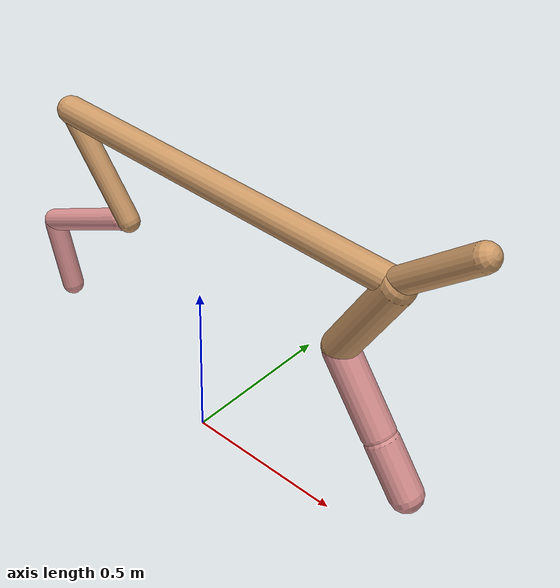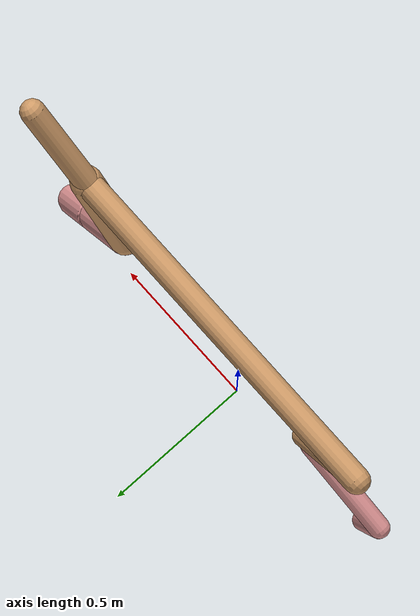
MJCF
<mujoco model="cheetah">
  <compiler angle="radian" coordinate="local" inertiafromgeom="true" settotalmass="14" />
  <default>
    <joint armature=".1" damping=".01" limited="true" solimplimit="0 .8 .03" solreflimit=".02 1" stiffness="8" />
    <geom conaffinity="0" condim="3" contype="1" friction="0.8 .1 .1" rgba="0.8 0.6 .4 1" solimp="0.0 0.8 0.01" solref="0.02 1" />
    <motor ctrllimited="true" ctrlrange="-1 1" />
  </default>
  <size nstack="300000" nuser_geom="1" />
  <option gravity="0 0 -9.81" timestep="0.01" />
  <worldbody>
    <body name="torso" pos="0.0 0.0 0.8991506570608641">
      <joint armature="0" axis="1 0 0" damping="0" limited="false" name="ignorex" pos="0 0 0" stiffness="0" type="slide" />
      <joint armature="0" axis="0 0 1" damping="0" limited="false" name="ignorez" pos="0 0 0" stiffness="0" type="slide" />
      <joint armature="0" axis="0 1 0" damping="0" limited="false" name="ignorey" pos="0 0 0" stiffness="0" type="hinge" />
      <geom fromto="-0.5 0.0 0.0 0.6680351359737883 0.0 0.0" name="torso" size="0.04097912478693688" type="capsule" />
      <geom axisangle="0 1 0 .87" name="head" pos="0.7680351359737884 0.0 0.1" size="0.03822078873174462 0.15" type="capsule" />

      <body name="bthigh" pos="-.5 0 0">
        <joint axis="0 1 0" damping="6" name="bthigh" pos="0 0 0" range="-.52 1.05" stiffness="240" type="hinge" />
        <geom axisangle="0 1 0 -3.8" name="bthigh" pos="0.1139760150567249 0.0 -0.14816881957374237" size="0.033226518303631075 0.1679223690217439" type="capsule" />
        <body name="bshin" pos="0.1879520301134498 0.0 -0.2863376391474847">
          <joint axis="0 1 0" damping="4.5" name="bshin" pos="0 0 0" range="-.785 .785" stiffness="180" type="hinge" />
          <geom axisangle="0 1 0 -2.03" name="bshin" pos="-0.1612093691053606 0.0 -0.0806046845526803" rgba="0.9 0.6 0.6 1" size="0.033226518303631075 0.1737127955397351" type="capsule" />
          <body name="bfoot" pos="-0.3224187382107212 0.0 -0.1612093691053606">
            <joint axis="0 1 0" damping="3" name="bfoot" pos="0 0 0" range="-.4 .785" stiffness="120" type="hinge" />
            <geom axisangle="0 1 0 -.27" name="bfoot" pos="0.03439068556010878 0.0 -0.11119654997768508" rgba="0.9 0.6 0.6 1" size="0.033226518303631075 0.10886001853823399" type="capsule" />
            <inertial mass="10" />
          </body>
        </body>
      </body>
      <body name="fthigh" pos="0.6680351359737884 0.0 0.0">
        <joint axis="0 1 0" damping="4.5" name="fthigh" pos="0 0 0" range="-1.5 0.8" stiffness="180" type="hinge" />
        <geom axisangle="0 1 0 .52" name="fthigh" pos="-0.08396030407148335 0.0 -0.14393194983682858" size="0.04964339958391915 0.16070610605553864" type="capsule" />
        <body name="fshin" pos="-0.1679206081429667 0.0 -0.28786389967365716">
          <joint axis="0 1 0" damping="3" name="fshin" pos="0 0 0" range="-1.2 1.1" stiffness="120" type="hinge" />
          <geom axisangle="0 1 0 -.6" name="fshin" pos="0.07792854374593047 0.0 -0.10790106057128833" rgba="0.9 0.6 0.6 1" size="0.04964339958391915 0.1280815582096774" type="capsule" />
          <body name="ffoot" pos="0.15585708749186095 0.0 -0.21580212114257666">
            <joint axis="0 1 0" damping="1.5" name="ffoot" pos="0 0 0" range="-3.1 -0.3" stiffness="60" type="hinge" />
            <geom axisangle="0 1 0 -.6" name="ffoot" pos="0.05288541430277337 0.0 -0.08226620002653637" rgba="0.9 0.6 0.6 1" size="0.04964339958391915 0.08458216108186245" type="capsule" />
            <inertial mass="10" />
          </body>
        </body>
      </body>
    </body>
  </worldbody>
  <actuator>
    <motor gear="120" joint="bthigh" name="bthigh" />
    <motor gear="90" joint="bshin" name="bshin" />
    <motor gear="60" joint="bfoot" name="bfoot" />
    <motor gear="120" joint="fthigh" name="fthigh" />
    <motor gear="60" joint="fshin" name="fshin" />
    <motor gear="30" joint="ffoot" name="ffoot" />
  </actuator>
</mujoco>
